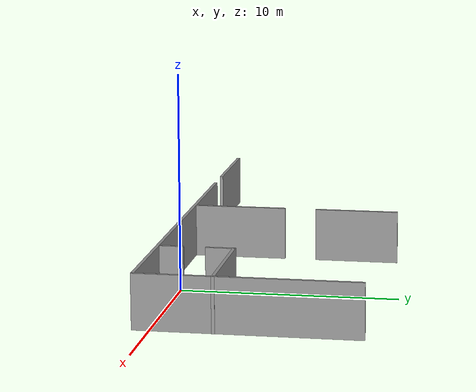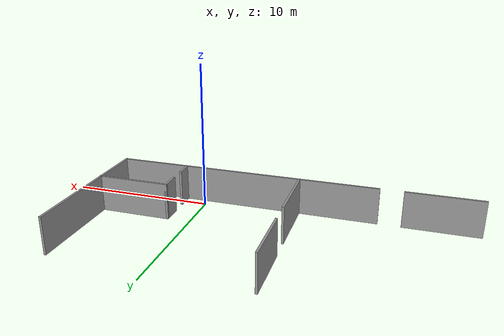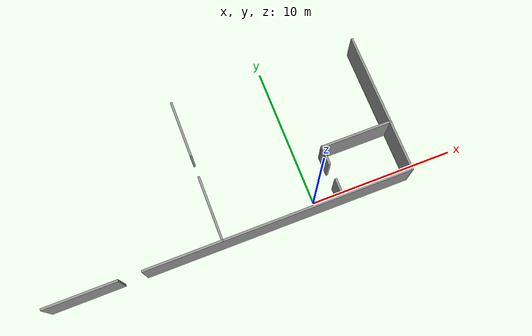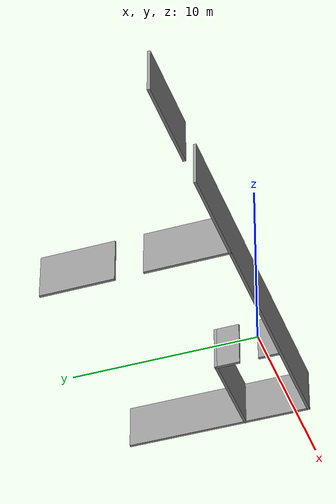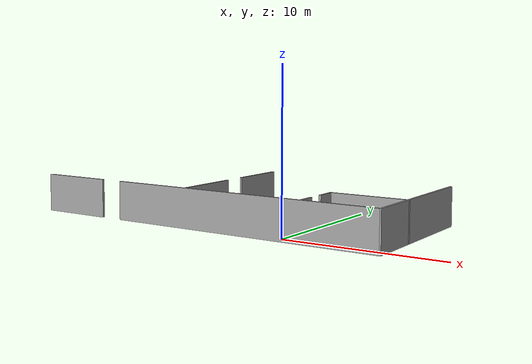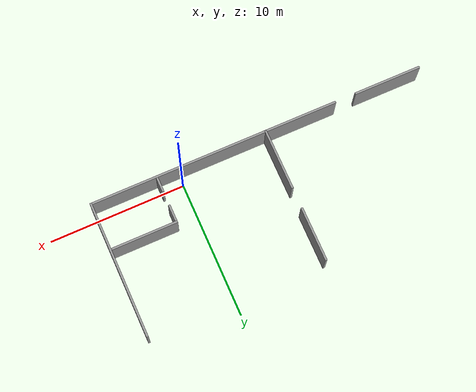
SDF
<?xml version='1.0'?>
<sdf version='1.6'>
  <model name='office'>
    <pose frame=''>-5.90087 4.24806 0 0 -0 0</pose>
    <link name='Wall_11'>
      <collision name='Wall_11_Collision'>
        <geometry>
          <box>
            <size>5 0.15 2.5</size>
          </box>
        </geometry>
        <pose frame=''>0 0 1.25 0 -0 0</pose>
      </collision>
      <visual name='Wall_11_Visual'>
        <pose frame=''>0 0 1.25 0 -0 0</pose>
        <geometry>
          <box>
            <size>5 0.15 2.5</size>
          </box>
        </geometry>
        <material>
          <script>
            <uri>file://media/materials/scripts/gazebo.material</uri>
            <name>Gazebo/Grey</name>
          </script>
          <ambient>1 1 1 1</ambient>
        </material>
        <meta>
          <layer>0</layer>
        </meta>
      </visual>
      <pose frame=''>9.92866 -1.47024 0 0 -0 3.14159</pose>
    </link>
    <link name='Wall_12'>
      <pose frame=''>7.50366 -3.14524 0 0 -0 -1.5708</pose>
      <visual name='Wall_12_Visual_0'>
        <pose frame=''>-1.06777 0 1.25 0 -0 0</pose>
        <geometry>
          <box>
            <size>1.36447 0.15 2.5</size>
          </box>
        </geometry>
        <material>
          <script>
            <uri>file://media/materials/scripts/gazebo.material</uri>
            <name>Gazebo/Grey</name>
          </script>
          <ambient>1 1 1 1</ambient>
        </material>
        <meta>
          <layer>0</layer>
        </meta>
      </visual>
      <collision name='Wall_12_Collision_0'>
        <geometry>
          <box>
            <size>1.36447 0.15 2.5</size>
          </box>
        </geometry>
        <pose frame=''>-1.06777 0 1.25 0 -0 0</pose>
      </collision>
      <visual name='Wall_12_Visual_1'>
        <pose frame=''>1.18223 0 1.25 0 -0 0</pose>
        <geometry>
          <box>
            <size>1.13553 0.15 2.5</size>
          </box>
        </geometry>
        <material>
          <script>
            <uri>file://media/materials/scripts/gazebo.material</uri>
            <name>Gazebo/Grey</name>
          </script>
          <ambient>1 1 1 1</ambient>
        </material>
        <meta>
          <layer>0</layer>
        </meta>
      </visual>
      <collision name='Wall_12_Collision_1'>
        <geometry>
          <box>
            <size>1.13553 0.15 2.5</size>
          </box>
        </geometry>
        <pose frame=''>1.18223 0 1.25 0 -0 0</pose>
      </collision>
    </link>
    <link name='Wall_2'>
      <pose frame=''>-0.053657 -4.93833 0 0 -0 0</pose>
      <visual name='Wall_2_Visual_0'>
        <pose frame=''>-9.89721 0 1.25 0 -0 0</pose>
        <geometry>
          <box>
            <size>4.95558 0.15 2.5</size>
          </box>
        </geometry>
        <material>
          <script>
            <uri>file://media/materials/scripts/gazebo.material</uri>
            <name>Gazebo/Grey</name>
          </script>
          <ambient>1 1 1 1</ambient>
        </material>
        <meta>
          <layer>0</layer>
        </meta>
      </visual>
      <collision name='Wall_2_Collision_0'>
        <geometry>
          <box>
            <size>4.95558 0.15 2.5</size>
          </box>
        </geometry>
        <pose frame=''>-9.89721 0 1.25 0 -0 0</pose>
      </collision>
      <visual name='Wall_2_Visual_1'>
        <pose frame=''>3.22779 0 1.25 0 -0 0</pose>
        <geometry>
          <box>
            <size>18.2944 0.15 2.5</size>
          </box>
        </geometry>
        <material>
          <script>
            <uri>file://media/materials/scripts/gazebo.material</uri>
            <name>Gazebo/Grey</name>
          </script>
          <ambient>1 1 1 1</ambient>
        </material>
        <meta>
          <layer>0</layer>
        </meta>
      </visual>
      <collision name='Wall_2_Collision_1'>
        <geometry>
          <box>
            <size>18.2944 0.15 2.5</size>
          </box>
        </geometry>
        <pose frame=''>3.22779 0 1.25 0 -0 0</pose>
      </collision>
    </link>
    <link name='Wall_7'>
      <collision name='Wall_7_Collision'>
        <geometry>
          <box>
            <size>10 0.15 2.5</size>
          </box>
        </geometry>
        <pose frame=''>0 0 1.25 0 -0 0</pose>
      </collision>
      <visual name='Wall_7_Visual'>
        <pose frame=''>0 0 1.25 0 -0 0</pose>
        <geometry>
          <box>
            <size>10 0.15 2.5</size>
          </box>
        </geometry>
        <material>
          <script>
            <uri>file://media/materials/scripts/gazebo.material</uri>
            <name>Gazebo/Grey</name>
          </script>
          <ambient>1 1 1 1</ambient>
        </material>
        <meta>
          <layer>0</layer>
        </meta>
      </visual>
      <pose frame=''>12.3463 -0.013329 0 0 -0 1.5708</pose>
    </link>
    <link name='Wall_9'>
      <pose frame=''>-0.663212 0.013329 0 0 -0 1.5708</pose>
      <visual name='Wall_9_Visual_0'>
        <pose frame=''>-2.7401 0 1.25 0 -0 0</pose>
        <geometry>
          <box>
            <size>4.51981 0.15 2.5</size>
          </box>
        </geometry>
        <material>
          <script>
            <uri>file://media/materials/scripts/gazebo.material</uri>
            <name>Gazebo/Grey</name>
          </script>
          <ambient>1 1 1 1</ambient>
        </material>
        <meta>
          <layer>0</layer>
        </meta>
      </visual>
      <collision name='Wall_9_Collision_0'>
        <geometry>
          <box>
            <size>4.51981 0.15 2.5</size>
          </box>
        </geometry>
        <pose frame=''>-2.7401 0 1.25 0 -0 0</pose>
      </collision>
      <visual name='Wall_9_Visual_1'>
        <pose frame=''>3.0099 0 1.25 0 -0 0</pose>
        <geometry>
          <box>
            <size>3.98019 0.15 2.5</size>
          </box>
        </geometry>
        <material>
          <script>
            <uri>file://media/materials/scripts/gazebo.material</uri>
            <name>Gazebo/Grey</name>
          </script>
          <ambient>1 1 1 1</ambient>
        </material>
        <meta>
          <layer>0</layer>
        </meta>
      </visual>
      <collision name='Wall_9_Collision_1'>
        <geometry>
          <box>
            <size>3.98019 0.15 2.5</size>
          </box>
        </geometry>
        <pose frame=''>3.0099 0 1.25 0 -0 0</pose>
      </collision>
    </link>
    <static>1</static>
  </model>
</sdf>
